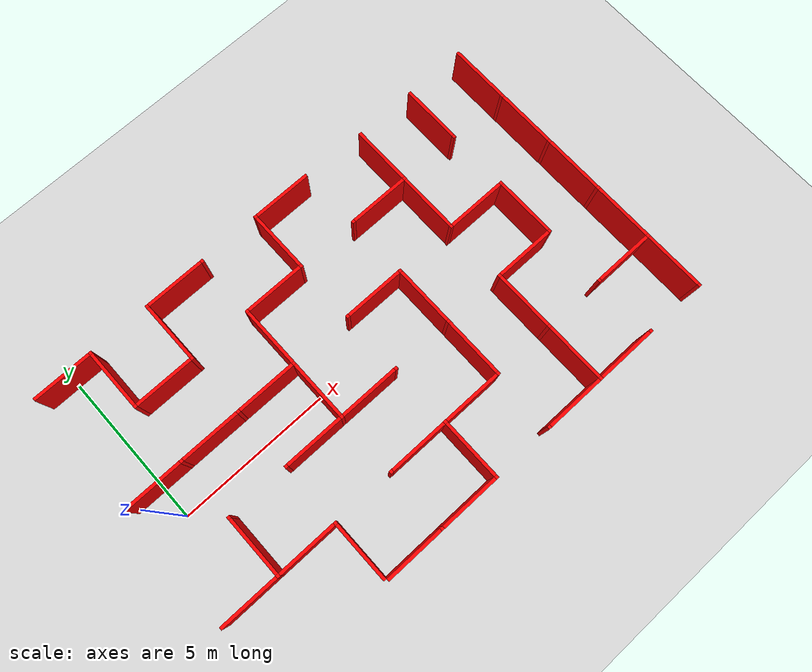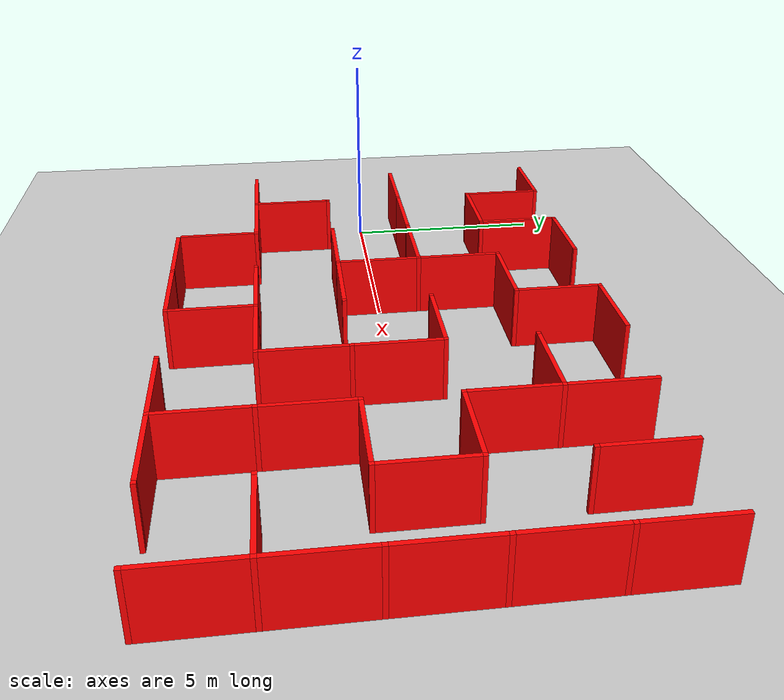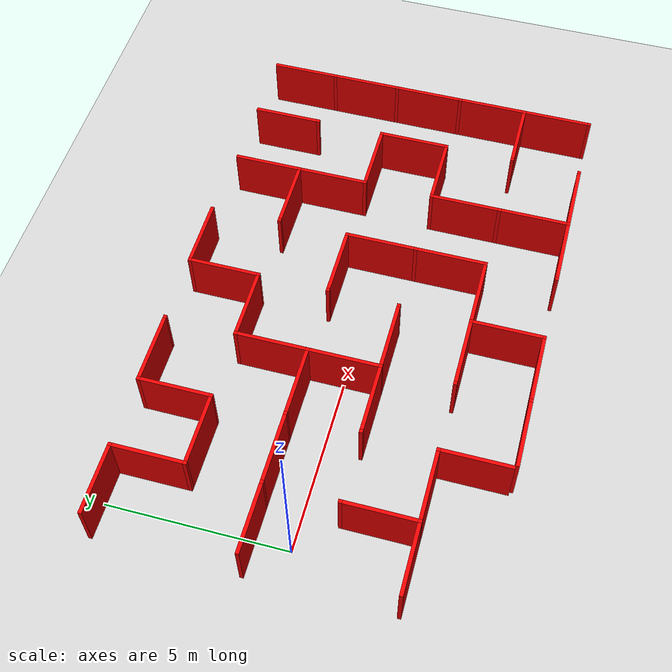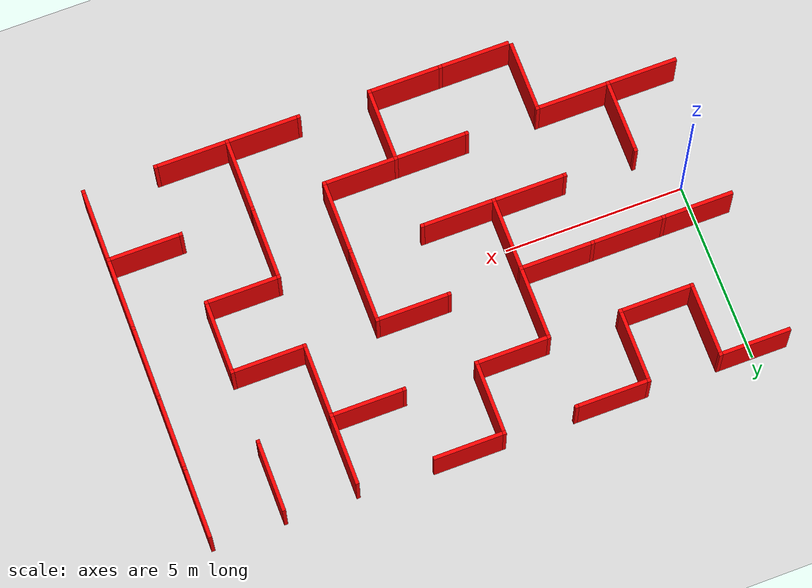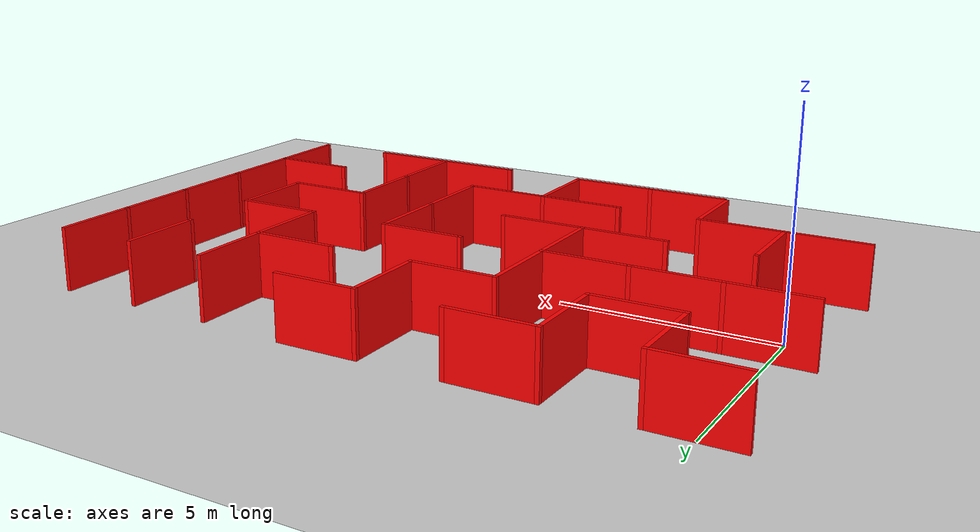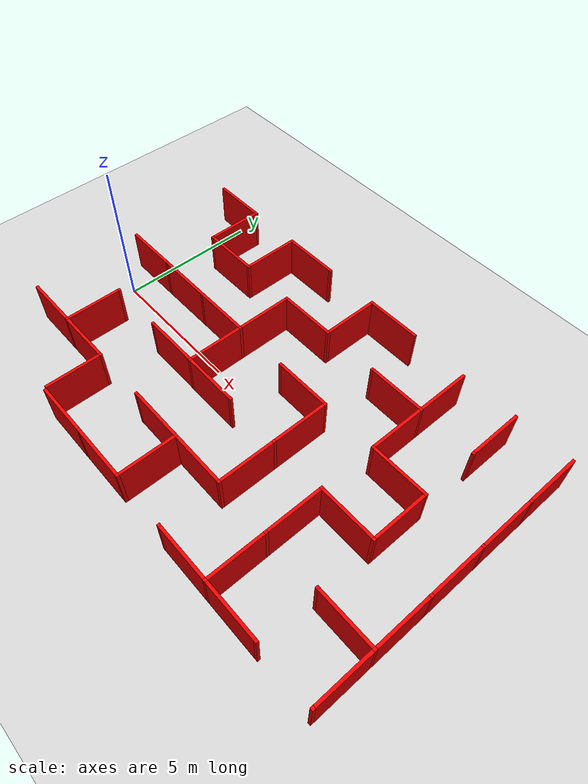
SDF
<sdf version="1.7">
 <world name="empty">
  <model name="ground_plane">
   <static>true</static>
   <link name="link">
    <collision name="collision1">
     <geometry><plane><normal>0 0 1</normal><size>1 1</size></plane></geometry>
    </collision>
    <visual name="visual1"><geometry><plane><normal>0 0 1</normal><size>100 100</size></plane></geometry></visual>
   </link>
  </model>
  <model name="Untitled">
   <link name="Wall_7_5_h">
    <collision name="Wall_0_Collision">
     <geometry><box><size>1.9 0.1 1.5</size></box></geometry>
     <pose>0 0 0.75 0 -0 0</pose>
    </collision>
    <visual name="Wall_0_Visual">
     <pose>0 0 0.75 0 -0 0</pose>
     <geometry><box><size>1.9 0.1 1.5</size></box></geometry>
     <material><ambient>1 0 0 1</ambient><diffuse>1 0 0 1</diffuse><specular>0.1 0.1 0.1 1</specular></material>
     <meta><layer>0</layer></meta>
    </visual>
    <pose>0 5 0 0 -0 0</pose>
   </link>
   <link name="Wall_8_5_v">
    <collision name="Wall_0_Collision">
     <geometry><box><size>1.9 0.1 1.5</size></box></geometry>
     <pose>0 0 0.75 0 -0 0</pose>
    </collision>
    <visual name="Wall_0_Visual">
     <pose>0 0 0.75 0 -0 0</pose>
     <geometry><box><size>1.9 0.1 1.5</size></box></geometry>
     <material><ambient>1 0 0 1</ambient><diffuse>1 0 0 1</diffuse><specular>0.1 0.1 0.1 1</specular></material>
     <meta><layer>0</layer></meta>
    </visual>
    <pose>1 4 0 0 -0 1.5708</pose>
   </link>
   <link name="Joint_1_5">
    <collision name="Wall_2_Collision">
     <geometry><box><size>0.1 0.1 1.5</size></box></geometry>
     <pose>0 0 0.75 0 -0 0</pose>
    </collision>
    <visual name="Wall_2_Visual">
     <pose>0 0 0.75 0 -0 0</pose>
     <geometry><box><size>0.1 0.1 1.5</size></box></geometry>
     <material><ambient>1 0 0 1</ambient><diffuse>1 0 0 1</diffuse><specular>0.1 0.1 0.1 1</specular></material>
     <meta><layer>0</layer></meta>
    </visual>
    <pose>1 5 0 0 -0 0</pose>
   </link>
   <link name="Wall_9_5_h">
    <collision name="Wall_0_Collision">
     <geometry><box><size>1.9 0.1 1.5</size></box></geometry>
     <pose>0 0 0.75 0 -0 0</pose>
    </collision>
    <visual name="Wall_0_Visual">
     <pose>0 0 0.75 0 -0 0</pose>
     <geometry><box><size>1.9 0.1 1.5</size></box></geometry>
     <material><ambient>1 0 0 1</ambient><diffuse>1 0 0 1</diffuse><specular>0.1 0.1 0.1 1</specular></material>
     <meta><layer>0</layer></meta>
    </visual>
    <pose>4 5 0 0 -0 0</pose>
   </link>
   <link name="Wall_9_5_v">
    <collision name="Wall_0_Collision">
     <geometry><box><size>1.9 0.1 1.5</size></box></geometry>
     <pose>0 0 0.75 0 -0 0</pose>
    </collision>
    <visual name="Wall_0_Visual">
     <pose>0 0 0.75 0 -0 0</pose>
     <geometry><box><size>1.9 0.1 1.5</size></box></geometry>
     <material><ambient>1 0 0 1</ambient><diffuse>1 0 0 1</diffuse><specular>0.1 0.1 0.1 1</specular></material>
     <meta><layer>0</layer></meta>
    </visual>
    <pose>3 4 0 0 -0 1.5708</pose>
   </link>
   <link name="Joint_3_5">
    <collision name="Wall_2_Collision">
     <geometry><box><size>0.1 0.1 1.5</size></box></geometry>
     <pose>0 0 0.75 0 -0 0</pose>
    </collision>
    <visual name="Wall_2_Visual">
     <pose>0 0 0.75 0 -0 0</pose>
     <geometry><box><size>0.1 0.1 1.5</size></box></geometry>
     <material><ambient>1 0 0 1</ambient><diffuse>1 0 0 1</diffuse><specular>0.1 0.1 0.1 1</specular></material>
     <meta><layer>0</layer></meta>
    </visual>
    <pose>3 5 0 0 -0 0</pose>
   </link>
   <link name="Joint_5_5">
    <collision name="Wall_2_Collision">
     <geometry><box><size>0.1 0.1 1.5</size></box></geometry>
     <pose>0 0 0.75 0 -0 0</pose>
    </collision>
    <visual name="Wall_2_Visual">
     <pose>0 0 0.75 0 -0 0</pose>
     <geometry><box><size>0.1 0.1 1.5</size></box></geometry>
     <material><ambient>1 0 0 1</ambient><diffuse>1 0 0 1</diffuse><specular>0.1 0.1 0.1 1</specular></material>
     <meta><layer>0</layer></meta>
    </visual>
    <pose>5 5 0 0 -0 0</pose>
   </link>
   <link name="Wall_11_5_h">
    <collision name="Wall_0_Collision">
     <geometry><box><size>1.9 0.1 1.5</size></box></geometry>
     <pose>0 0 0.75 0 -0 0</pose>
    </collision>
    <visual name="Wall_0_Visual">
     <pose>0 0 0.75 0 -0 0</pose>
     <geometry><box><size>1.9 0.1 1.5</size></box></geometry>
     <material><ambient>1 0 0 1</ambient><diffuse>1 0 0 1</diffuse><specular>0.1 0.1 0.1 1</specular></material>
     <meta><layer>0</layer></meta>
    </visual>
    <pose>8 5 0 0 -0 0</pose>
   </link>
   <link name="Wall_11_5_v">
    <collision name="Wall_0_Collision">
     <geometry><box><size>1.9 0.1 1.5</size></box></geometry>
     <pose>0 0 0.75 0 -0 0</pose>
    </collision>
    <visual name="Wall_0_Visual">
     <pose>0 0 0.75 0 -0 0</pose>
     <geometry><box><size>1.9 0.1 1.5</size></box></geometry>
     <material><ambient>1 0 0 1</ambient><diffuse>1 0 0 1</diffuse><specular>0.1 0.1 0.1 1</specular></material>
     <meta><layer>0</layer></meta>
    </visual>
    <pose>7 4 0 0 -0 1.5708</pose>
   </link>
   <link name="Joint_7_5">
    <collision name="Wall_2_Collision">
     <geometry><box><size>0.1 0.1 1.5</size></box></geometry>
     <pose>0 0 0.75 0 -0 0</pose>
    </collision>
    <visual name="Wall_2_Visual">
     <pose>0 0 0.75 0 -0 0</pose>
     <geometry><box><size>0.1 0.1 1.5</size></box></geometry>
     <material><ambient>1 0 0 1</ambient><diffuse>1 0 0 1</diffuse><specular>0.1 0.1 0.1 1</specular></material>
     <meta><layer>0</layer></meta>
    </visual>
    <pose>7 5 0 0 -0 0</pose>
   </link>
   <link name="Wall_13_5_v">
    <collision name="Wall_0_Collision">
     <geometry><box><size>1.9 0.1 1.5</size></box></geometry>
     <pose>0 0 0.75 0 -0 0</pose>
    </collision>
    <visual name="Wall_0_Visual">
     <pose>0 0 0.75 0 -0 0</pose>
     <geometry><box><size>1.9 0.1 1.5</size></box></geometry>
     <material><ambient>1 0 0 1</ambient><diffuse>1 0 0 1</diffuse><specular>0.1 0.1 0.1 1</specular></material>
     <meta><layer>0</layer></meta>
    </visual>
    <pose>11 4 0 0 -0 1.5708</pose>
   </link>
   <link name="Wall_14_5_v">
    <collision name="Wall_0_Collision">
     <geometry><box><size>1.9 0.1 1.5</size></box></geometry>
     <pose>0 0 0.75 0 -0 0</pose>
    </collision>
    <visual name="Wall_0_Visual">
     <pose>0 0 0.75 0 -0 0</pose>
     <geometry><box><size>1.9 0.1 1.5</size></box></geometry>
     <material><ambient>1 0 0 1</ambient><diffuse>1 0 0 1</diffuse><specular>0.1 0.1 0.1 1</specular></material>
     <meta><layer>0</layer></meta>
    </visual>
    <pose>13 4 0 0 -0 1.5708</pose>
   </link>
   <link name="Wall_15_5_v">
    <collision name="Wall_0_Collision">
     <geometry><box><size>1.9 0.1 1.5</size></box></geometry>
     <pose>0 0 0.75 0 -0 0</pose>
    </collision>
    <visual name="Wall_0_Visual">
     <pose>0 0 0.75 0 -0 0</pose>
     <geometry><box><size>1.9 0.1 1.5</size></box></geometry>
     <material><ambient>1 0 0 1</ambient><diffuse>1 0 0 1</diffuse><specular>0.1 0.1 0.1 1</specular></material>
     <meta><layer>0</layer></meta>
    </visual>
    <pose>15 4 0 0 -0 1.5708</pose>
   </link>
   <link name="Wall_8_6_h">
    <collision name="Wall_0_Collision">
     <geometry><box><size>1.9 0.1 1.5</size></box></geometry>
     <pose>0 0 0.75 0 -0 0</pose>
    </collision>
    <visual name="Wall_0_Visual">
     <pose>0 0 0.75 0 -0 0</pose>
     <geometry><box><size>1.9 0.1 1.5</size></box></geometry>
     <material><ambient>1 0 0 1</ambient><diffuse>1 0 0 1</diffuse><specular>0.1 0.1 0.1 1</specular></material>
     <meta><layer>0</layer></meta>
    </visual>
    <pose>2 3 0 0 -0 0</pose>
   </link>
   <link name="Joint_1_3">
    <collision name="Wall_2_Collision">
     <geometry><box><size>0.1 0.1 1.5</size></box></geometry>
     <pose>0 0 0.75 0 -0 0</pose>
    </collision>
    <visual name="Wall_2_Visual">
     <pose>0 0 0.75 0 -0 0</pose>
     <geometry><box><size>0.1 0.1 1.5</size></box></geometry>
     <material><ambient>1 0 0 1</ambient><diffuse>1 0 0 1</diffuse><specular>0.1 0.1 0.1 1</specular></material>
     <meta><layer>0</layer></meta>
    </visual>
    <pose>1 3 0 0 -0 0</pose>
   </link>
   <link name="Joint_3_3">
    <collision name="Wall_2_Collision">
     <geometry><box><size>0.1 0.1 1.5</size></box></geometry>
     <pose>0 0 0.75 0 -0 0</pose>
    </collision>
    <visual name="Wall_2_Visual">
     <pose>0 0 0.75 0 -0 0</pose>
     <geometry><box><size>0.1 0.1 1.5</size></box></geometry>
     <material><ambient>1 0 0 1</ambient><diffuse>1 0 0 1</diffuse><specular>0.1 0.1 0.1 1</specular></material>
     <meta><layer>0</layer></meta>
    </visual>
    <pose>3 3 0 0 -0 0</pose>
   </link>
   <link name="Wall_10_6_h">
    <collision name="Wall_0_Collision">
     <geometry><box><size>1.9 0.1 1.5</size></box></geometry>
     <pose>0 0 0.75 0 -0 0</pose>
    </collision>
    <visual name="Wall_0_Visual">
     <pose>0 0 0.75 0 -0 0</pose>
     <geometry><box><size>1.9 0.1 1.5</size></box></geometry>
     <material><ambient>1 0 0 1</ambient><diffuse>1 0 0 1</diffuse><specular>0.1 0.1 0.1 1</specular></material>
     <meta><layer>0</layer></meta>
    </visual>
    <pose>6 3 0 0 -0 0</pose>
   </link>
   <link name="Wall_10_6_v">
    <collision name="Wall_0_Collision">
     <geometry><box><size>1.9 0.1 1.5</size></box></geometry>
     <pose>0 0 0.75 0 -0 0</pose>
    </collision>
    <visual name="Wall_0_Visual">
     <pose>0 0 0.75 0 -0 0</pose>
     <geometry><box><size>1.9 0.1 1.5</size></box></geometry>
     <material><ambient>1 0 0 1</ambient><diffuse>1 0 0 1</diffuse><specular>0.1 0.1 0.1 1</specular></material>
     <meta><layer>0</layer></meta>
    </visual>
    <pose>5 2 0 0 -0 1.5708</pose>
   </link>
   <link name="Joint_5_3">
    <collision name="Wall_2_Collision">
     <geometry><box><size>0.1 0.1 1.5</size></box></geometry>
     <pose>0 0 0.75 0 -0 0</pose>
    </collision>
    <visual name="Wall_2_Visual">
     <pose>0 0 0.75 0 -0 0</pose>
     <geometry><box><size>0.1 0.1 1.5</size></box></geometry>
     <material><ambient>1 0 0 1</ambient><diffuse>1 0 0 1</diffuse><specular>0.1 0.1 0.1 1</specular></material>
     <meta><layer>0</layer></meta>
    </visual>
    <pose>5 3 0 0 -0 0</pose>
   </link>
   <link name="Joint_7_3">
    <collision name="Wall_2_Collision">
     <geometry><box><size>0.1 0.1 1.5</size></box></geometry>
     <pose>0 0 0.75 0 -0 0</pose>
    </collision>
    <visual name="Wall_2_Visual">
     <pose>0 0 0.75 0 -0 0</pose>
     <geometry><box><size>0.1 0.1 1.5</size></box></geometry>
     <material><ambient>1 0 0 1</ambient><diffuse>1 0 0 1</diffuse><specular>0.1 0.1 0.1 1</specular></material>
     <meta><layer>0</layer></meta>
    </visual>
    <pose>7 3 0 0 -0 0</pose>
   </link>
   <link name="Wall_12_6_h">
    <collision name="Wall_0_Collision">
     <geometry><box><size>1.9 0.1 1.5</size></box></geometry>
     <pose>0 0 0.75 0 -0 0</pose>
    </collision>
    <visual name="Wall_0_Visual">
     <pose>0 0 0.75 0 -0 0</pose>
     <geometry><box><size>1.9 0.1 1.5</size></box></geometry>
     <material><ambient>1 0 0 1</ambient><diffuse>1 0 0 1</diffuse><specular>0.1 0.1 0.1 1</specular></material>
     <meta><layer>0</layer></meta>
    </visual>
    <pose>10 3 0 0 -0 0</pose>
   </link>
   <link name="Joint_9_3">
    <collision name="Wall_2_Collision">
     <geometry><box><size>0.1 0.1 1.5</size></box></geometry>
     <pose>0 0 0.75 0 -0 0</pose>
    </collision>
    <visual name="Wall_2_Visual">
     <pose>0 0 0.75 0 -0 0</pose>
     <geometry><box><size>0.1 0.1 1.5</size></box></geometry>
     <material><ambient>1 0 0 1</ambient><diffuse>1 0 0 1</diffuse><specular>0.1 0.1 0.1 1</specular></material>
     <meta><layer>0</layer></meta>
    </visual>
    <pose>9 3 0 0 -0 0</pose>
   </link>
   <link name="Wall_13_6_v">
    <collision name="Wall_0_Collision">
     <geometry><box><size>1.9 0.1 1.5</size></box></geometry>
     <pose>0 0 0.75 0 -0 0</pose>
    </collision>
    <visual name="Wall_0_Visual">
     <pose>0 0 0.75 0 -0 0</pose>
     <geometry><box><size>1.9 0.1 1.5</size></box></geometry>
     <material><ambient>1 0 0 1</ambient><diffuse>1 0 0 1</diffuse><specular>0.1 0.1 0.1 1</specular></material>
     <meta><layer>0</layer></meta>
    </visual>
    <pose>11 2 0 0 -0 1.5708</pose>
   </link>
   <link name="Joint_11_3">
    <collision name="Wall_2_Collision">
     <geometry><box><size>0.1 0.1 1.5</size></box></geometry>
     <pose>0 0 0.75 0 -0 0</pose>
    </collision>
    <visual name="Wall_2_Visual">
     <pose>0 0 0.75 0 -0 0</pose>
     <geometry><box><size>0.1 0.1 1.5</size></box></geometry>
     <material><ambient>1 0 0 1</ambient><diffuse>1 0 0 1</diffuse><specular>0.1 0.1 0.1 1</specular></material>
     <meta><layer>0</layer></meta>
    </visual>
    <pose>11 3 0 0 -0 0</pose>
   </link>
   <link name="Joint_13_3">
    <collision name="Wall_2_Collision">
     <geometry><box><size>0.1 0.1 1.5</size></box></geometry>
     <pose>0 0 0.75 0 -0 0</pose>
    </collision>
    <visual name="Wall_2_Visual">
     <pose>0 0 0.75 0 -0 0</pose>
     <geometry><box><size>0.1 0.1 1.5</size></box></geometry>
     <material><ambient>1 0 0 1</ambient><diffuse>1 0 0 1</diffuse><specular>0.1 0.1 0.1 1</specular></material>
     <meta><layer>0</layer></meta>
    </visual>
    <pose>13 3 0 0 -0 0</pose>
   </link>
   <link name="Wall_15_6_v">
    <collision name="Wall_0_Collision">
     <geometry><box><size>1.9 0.1 1.5</size></box></geometry>
     <pose>0 0 0.75 0 -0 0</pose>
    </collision>
    <visual name="Wall_0_Visual">
     <pose>0 0 0.75 0 -0 0</pose>
     <geometry><box><size>1.9 0.1 1.5</size></box></geometry>
     <material><ambient>1 0 0 1</ambient><diffuse>1 0 0 1</diffuse><specular>0.1 0.1 0.1 1</specular></material>
     <meta><layer>0</layer></meta>
    </visual>
    <pose>15 2 0 0 -0 1.5708</pose>
   </link>
   <link name="Joint_15_3">
    <collision name="Wall_2_Collision">
     <geometry><box><size>0.1 0.1 1.5</size></box></geometry>
     <pose>0 0 0.75 0 -0 0</pose>
    </collision>
    <visual name="Wall_2_Visual">
     <pose>0 0 0.75 0 -0 0</pose>
     <geometry><box><size>0.1 0.1 1.5</size></box></geometry>
     <material><ambient>1 0 0 1</ambient><diffuse>1 0 0 1</diffuse><specular>0.1 0.1 0.1 1</specular></material>
     <meta><layer>0</layer></meta>
    </visual>
    <pose>15 3 0 0 -0 0</pose>
   </link>
   <link name="Wall_7_7_h">
    <collision name="Wall_0_Collision">
     <geometry><box><size>1.9 0.1 1.5</size></box></geometry>
     <pose>0 0 0.75 0 -0 0</pose>
    </collision>
    <visual name="Wall_0_Visual">
     <pose>0 0 0.75 0 -0 0</pose>
     <geometry><box><size>1.9 0.1 1.5</size></box></geometry>
     <material><ambient>1 0 0 1</ambient><diffuse>1 0 0 1</diffuse><specular>0.1 0.1 0.1 1</specular></material>
     <meta><layer>0</layer></meta>
    </visual>
    <pose>0 1 0 0 -0 0</pose>
   </link>
   <link name="Wall_8_7_h">
    <collision name="Wall_0_Collision">
     <geometry><box><size>1.9 0.1 1.5</size></box></geometry>
     <pose>0 0 0.75 0 -0 0</pose>
    </collision>
    <visual name="Wall_0_Visual">
     <pose>0 0 0.75 0 -0 0</pose>
     <geometry><box><size>1.9 0.1 1.5</size></box></geometry>
     <material><ambient>1 0 0 1</ambient><diffuse>1 0 0 1</diffuse><specular>0.1 0.1 0.1 1</specular></material>
     <meta><layer>0</layer></meta>
    </visual>
    <pose>2 1 0 0 -0 0</pose>
   </link>
   <link name="Joint_1_1">
    <collision name="Wall_2_Collision">
     <geometry><box><size>0.1 0.1 1.5</size></box></geometry>
     <pose>0 0 0.75 0 -0 0</pose>
    </collision>
    <visual name="Wall_2_Visual">
     <pose>0 0 0.75 0 -0 0</pose>
     <geometry><box><size>0.1 0.1 1.5</size></box></geometry>
     <material><ambient>1 0 0 1</ambient><diffuse>1 0 0 1</diffuse><specular>0.1 0.1 0.1 1</specular></material>
     <meta><layer>0</layer></meta>
    </visual>
    <pose>1 1 0 0 -0 0</pose>
   </link>
   <link name="Wall_9_7_h">
    <collision name="Wall_0_Collision">
     <geometry><box><size>1.9 0.1 1.5</size></box></geometry>
     <pose>0 0 0.75 0 -0 0</pose>
    </collision>
    <visual name="Wall_0_Visual">
     <pose>0 0 0.75 0 -0 0</pose>
     <geometry><box><size>1.9 0.1 1.5</size></box></geometry>
     <material><ambient>1 0 0 1</ambient><diffuse>1 0 0 1</diffuse><specular>0.1 0.1 0.1 1</specular></material>
     <meta><layer>0</layer></meta>
    </visual>
    <pose>4 1 0 0 -0 0</pose>
   </link>
   <link name="Joint_3_1">
    <collision name="Wall_2_Collision">
     <geometry><box><size>0.1 0.1 1.5</size></box></geometry>
     <pose>0 0 0.75 0 -0 0</pose>
    </collision>
    <visual name="Wall_2_Visual">
     <pose>0 0 0.75 0 -0 0</pose>
     <geometry><box><size>0.1 0.1 1.5</size></box></geometry>
     <material><ambient>1 0 0 1</ambient><diffuse>1 0 0 1</diffuse><specular>0.1 0.1 0.1 1</specular></material>
     <meta><layer>0</layer></meta>
    </visual>
    <pose>3 1 0 0 -0 0</pose>
   </link>
   <link name="Wall_10_7_v">
    <collision name="Wall_0_Collision">
     <geometry><box><size>1.9 0.1 1.5</size></box></geometry>
     <pose>0 0 0.75 0 -0 0</pose>
    </collision>
    <visual name="Wall_0_Visual">
     <pose>0 0 0.75 0 -0 0</pose>
     <geometry><box><size>1.9 0.1 1.5</size></box></geometry>
     <material><ambient>1 0 0 1</ambient><diffuse>1 0 0 1</diffuse><specular>0.1 0.1 0.1 1</specular></material>
     <meta><layer>0</layer></meta>
    </visual>
    <pose>5 -0 0 0 -0 1.5708</pose>
   </link>
   <link name="Joint_5_1">
    <collision name="Wall_2_Collision">
     <geometry><box><size>0.1 0.1 1.5</size></box></geometry>
     <pose>0 0 0.75 0 -0 0</pose>
    </collision>
    <visual name="Wall_2_Visual">
     <pose>0 0 0.75 0 -0 0</pose>
     <geometry><box><size>0.1 0.1 1.5</size></box></geometry>
     <material><ambient>1 0 0 1</ambient><diffuse>1 0 0 1</diffuse><specular>0.1 0.1 0.1 1</specular></material>
     <meta><layer>0</layer></meta>
    </visual>
    <pose>5 1 0 0 -0 0</pose>
   </link>
   <link name="Wall_11_7_h">
    <collision name="Wall_0_Collision">
     <geometry><box><size>1.9 0.1 1.5</size></box></geometry>
     <pose>0 0 0.75 0 -0 0</pose>
    </collision>
    <visual name="Wall_0_Visual">
     <pose>0 0 0.75 0 -0 0</pose>
     <geometry><box><size>1.9 0.1 1.5</size></box></geometry>
     <material><ambient>1 0 0 1</ambient><diffuse>1 0 0 1</diffuse><specular>0.1 0.1 0.1 1</specular></material>
     <meta><layer>0</layer></meta>
    </visual>
    <pose>8 1 0 0 -0 0</pose>
   </link>
   <link name="Joint_7_1">
    <collision name="Wall_2_Collision">
     <geometry><box><size>0.1 0.1 1.5</size></box></geometry>
     <pose>0 0 0.75 0 -0 0</pose>
    </collision>
    <visual name="Wall_2_Visual">
     <pose>0 0 0.75 0 -0 0</pose>
     <geometry><box><size>0.1 0.1 1.5</size></box></geometry>
     <material><ambient>1 0 0 1</ambient><diffuse>1 0 0 1</diffuse><specular>0.1 0.1 0.1 1</specular></material>
     <meta><layer>0</layer></meta>
    </visual>
    <pose>7 1 0 0 -0 0</pose>
   </link>
   <link name="Wall_12_7_v">
    <collision name="Wall_0_Collision">
     <geometry><box><size>1.9 0.1 1.5</size></box></geometry>
     <pose>0 0 0.75 0 -0 0</pose>
    </collision>
    <visual name="Wall_0_Visual">
     <pose>0 0 0.75 0 -0 0</pose>
     <geometry><box><size>1.9 0.1 1.5</size></box></geometry>
     <material><ambient>1 0 0 1</ambient><diffuse>1 0 0 1</diffuse><specular>0.1 0.1 0.1 1</specular></material>
     <meta><layer>0</layer></meta>
    </visual>
    <pose>9 -0 0 0 -0 1.5708</pose>
   </link>
   <link name="Joint_9_1">
    <collision name="Wall_2_Collision">
     <geometry><box><size>0.1 0.1 1.5</size></box></geometry>
     <pose>0 0 0.75 0 -0 0</pose>
    </collision>
    <visual name="Wall_2_Visual">
     <pose>0 0 0.75 0 -0 0</pose>
     <geometry><box><size>0.1 0.1 1.5</size></box></geometry>
     <material><ambient>1 0 0 1</ambient><diffuse>1 0 0 1</diffuse><specular>0.1 0.1 0.1 1</specular></material>
     <meta><layer>0</layer></meta>
    </visual>
    <pose>9 1 0 0 -0 0</pose>
   </link>
   <link name="Wall_13_7_h">
    <collision name="Wall_0_Collision">
     <geometry><box><size>1.9 0.1 1.5</size></box></geometry>
     <pose>0 0 0.75 0 -0 0</pose>
    </collision>
    <visual name="Wall_0_Visual">
     <pose>0 0 0.75 0 -0 0</pose>
     <geometry><box><size>1.9 0.1 1.5</size></box></geometry>
     <material><ambient>1 0 0 1</ambient><diffuse>1 0 0 1</diffuse><specular>0.1 0.1 0.1 1</specular></material>
     <meta><layer>0</layer></meta>
    </visual>
    <pose>12 1 0 0 -0 0</pose>
   </link>
   <link name="Joint_11_1">
    <collision name="Wall_2_Collision">
     <geometry><box><size>0.1 0.1 1.5</size></box></geometry>
     <pose>0 0 0.75 0 -0 0</pose>
    </collision>
    <visual name="Wall_2_Visual">
     <pose>0 0 0.75 0 -0 0</pose>
     <geometry><box><size>0.1 0.1 1.5</size></box></geometry>
     <material><ambient>1 0 0 1</ambient><diffuse>1 0 0 1</diffuse><specular>0.1 0.1 0.1 1</specular></material>
     <meta><layer>0</layer></meta>
    </visual>
    <pose>11 1 0 0 -0 0</pose>
   </link>
   <link name="Wall_14_7_v">
    <collision name="Wall_0_Collision">
     <geometry><box><size>1.9 0.1 1.5</size></box></geometry>
     <pose>0 0 0.75 0 -0 0</pose>
    </collision>
    <visual name="Wall_0_Visual">
     <pose>0 0 0.75 0 -0 0</pose>
     <geometry><box><size>1.9 0.1 1.5</size></box></geometry>
     <material><ambient>1 0 0 1</ambient><diffuse>1 0 0 1</diffuse><specular>0.1 0.1 0.1 1</specular></material>
     <meta><layer>0</layer></meta>
    </visual>
    <pose>13 -0 0 0 -0 1.5708</pose>
   </link>
   <link name="Joint_13_1">
    <collision name="Wall_2_Collision">
     <geometry><box><size>0.1 0.1 1.5</size></box></geometry>
     <pose>0 0 0.75 0 -0 0</pose>
    </collision>
    <visual name="Wall_2_Visual">
     <pose>0 0 0.75 0 -0 0</pose>
     <geometry><box><size>0.1 0.1 1.5</size></box></geometry>
     <material><ambient>1 0 0 1</ambient><diffuse>1 0 0 1</diffuse><specular>0.1 0.1 0.1 1</specular></material>
     <meta><layer>0</layer></meta>
    </visual>
    <pose>13 1 0 0 -0 0</pose>
   </link>
   <link name="Wall_15_7_v">
    <collision name="Wall_0_Collision">
     <geometry><box><size>1.9 0.1 1.5</size></box></geometry>
     <pose>0 0 0.75 0 -0 0</pose>
    </collision>
    <visual name="Wall_0_Visual">
     <pose>0 0 0.75 0 -0 0</pose>
     <geometry><box><size>1.9 0.1 1.5</size></box></geometry>
     <material><ambient>1 0 0 1</ambient><diffuse>1 0 0 1</diffuse><specular>0.1 0.1 0.1 1</specular></material>
     <meta><layer>0</layer></meta>
    </visual>
    <pose>15 -0 0 0 -0 1.5708</pose>
   </link>
   <link name="Joint_15_1">
    <collision name="Wall_2_Collision">
     <geometry><box><size>0.1 0.1 1.5</size></box></geometry>
     <pose>0 0 0.75 0 -0 0</pose>
    </collision>
    <visual name="Wall_2_Visual">
     <pose>0 0 0.75 0 -0 0</pose>
     <geometry><box><size>0.1 0.1 1.5</size></box></geometry>
     <material><ambient>1 0 0 1</ambient><diffuse>1 0 0 1</diffuse><specular>0.1 0.1 0.1 1</specular></material>
     <meta><layer>0</layer></meta>
    </visual>
    <pose>15 1 0 0 -0 0</pose>
   </link>
   <link name="Wall_8_8_v">
    <collision name="Wall_0_Collision">
     <geometry><box><size>1.9 0.1 1.5</size></box></geometry>
     <pose>0 0 0.75 0 -0 0</pose>
    </collision>
    <visual name="Wall_0_Visual">
     <pose>0 0 0.75 0 -0 0</pose>
     <geometry><box><size>1.9 0.1 1.5</size></box></geometry>
     <material><ambient>1 0 0 1</ambient><diffuse>1 0 0 1</diffuse><specular>0.1 0.1 0.1 1</specular></material>
     <meta><layer>0</layer></meta>
    </visual>
    <pose>1 -2 0 0 -0 1.5708</pose>
   </link>
   <link name="Joint_1_-1">
    <collision name="Wall_2_Collision">
     <geometry><box><size>0.1 0.1 1.5</size></box></geometry>
     <pose>0 0 0.75 0 -0 0</pose>
    </collision>
    <visual name="Wall_2_Visual">
     <pose>0 0 0.75 0 -0 0</pose>
     <geometry><box><size>0.1 0.1 1.5</size></box></geometry>
     <material><ambient>1 0 0 1</ambient><diffuse>1 0 0 1</diffuse><specular>0.1 0.1 0.1 1</specular></material>
     <meta><layer>0</layer></meta>
    </visual>
    <pose>1 -1 0 0 -0 0</pose>
   </link>
   <link name="Wall_9_8_h">
    <collision name="Wall_0_Collision">
     <geometry><box><size>1.9 0.1 1.5</size></box></geometry>
     <pose>0 0 0.75 0 -0 0</pose>
    </collision>
    <visual name="Wall_0_Visual">
     <pose>0 0 0.75 0 -0 0</pose>
     <geometry><box><size>1.9 0.1 1.5</size></box></geometry>
     <material><ambient>1 0 0 1</ambient><diffuse>1 0 0 1</diffuse><specular>0.1 0.1 0.1 1</specular></material>
     <meta><layer>0</layer></meta>
    </visual>
    <pose>4 -1 0 0 -0 0</pose>
   </link>
   <link name="Joint_3_-1">
    <collision name="Wall_2_Collision">
     <geometry><box><size>0.1 0.1 1.5</size></box></geometry>
     <pose>0 0 0.75 0 -0 0</pose>
    </collision>
    <visual name="Wall_2_Visual">
     <pose>0 0 0.75 0 -0 0</pose>
     <geometry><box><size>0.1 0.1 1.5</size></box></geometry>
     <material><ambient>1 0 0 1</ambient><diffuse>1 0 0 1</diffuse><specular>0.1 0.1 0.1 1</specular></material>
     <meta><layer>0</layer></meta>
    </visual>
    <pose>3 -1 0 0 -0 0</pose>
   </link>
   <link name="Wall_10_8_h">
    <collision name="Wall_0_Collision">
     <geometry><box><size>1.9 0.1 1.5</size></box></geometry>
     <pose>0 0 0.75 0 -0 0</pose>
    </collision>
    <visual name="Wall_0_Visual">
     <pose>0 0 0.75 0 -0 0</pose>
     <geometry><box><size>1.9 0.1 1.5</size></box></geometry>
     <material><ambient>1 0 0 1</ambient><diffuse>1 0 0 1</diffuse><specular>0.1 0.1 0.1 1</specular></material>
     <meta><layer>0</layer></meta>
    </visual>
    <pose>6 -1 0 0 -0 0</pose>
   </link>
   <link name="Joint_5_-1">
    <collision name="Wall_2_Collision">
     <geometry><box><size>0.1 0.1 1.5</size></box></geometry>
     <pose>0 0 0.75 0 -0 0</pose>
    </collision>
    <visual name="Wall_2_Visual">
     <pose>0 0 0.75 0 -0 0</pose>
     <geometry><box><size>0.1 0.1 1.5</size></box></geometry>
     <material><ambient>1 0 0 1</ambient><diffuse>1 0 0 1</diffuse><specular>0.1 0.1 0.1 1</specular></material>
     <meta><layer>0</layer></meta>
    </visual>
    <pose>5 -1 0 0 -0 0</pose>
   </link>
   <link name="Joint_7_-1">
    <collision name="Wall_2_Collision">
     <geometry><box><size>0.1 0.1 1.5</size></box></geometry>
     <pose>0 0 0.75 0 -0 0</pose>
    </collision>
    <visual name="Wall_2_Visual">
     <pose>0 0 0.75 0 -0 0</pose>
     <geometry><box><size>0.1 0.1 1.5</size></box></geometry>
     <material><ambient>1 0 0 1</ambient><diffuse>1 0 0 1</diffuse><specular>0.1 0.1 0.1 1</specular></material>
     <meta><layer>0</layer></meta>
    </visual>
    <pose>7 -1 0 0 -0 0</pose>
   </link>
   <link name="Wall_12_8_v">
    <collision name="Wall_0_Collision">
     <geometry><box><size>1.9 0.1 1.5</size></box></geometry>
     <pose>0 0 0.75 0 -0 0</pose>
    </collision>
    <visual name="Wall_0_Visual">
     <pose>0 0 0.75 0 -0 0</pose>
     <geometry><box><size>1.9 0.1 1.5</size></box></geometry>
     <material><ambient>1 0 0 1</ambient><diffuse>1 0 0 1</diffuse><specular>0.1 0.1 0.1 1</specular></material>
     <meta><layer>0</layer></meta>
    </visual>
    <pose>9 -2 0 0 -0 1.5708</pose>
   </link>
   <link name="Joint_9_-1">
    <collision name="Wall_2_Collision">
     <geometry><box><size>0.1 0.1 1.5</size></box></geometry>
     <pose>0 0 0.75 0 -0 0</pose>
    </collision>
    <visual name="Wall_2_Visual">
     <pose>0 0 0.75 0 -0 0</pose>
     <geometry><box><size>0.1 0.1 1.5</size></box></geometry>
     <material><ambient>1 0 0 1</ambient><diffuse>1 0 0 1</diffuse><specular>0.1 0.1 0.1 1</specular></material>
     <meta><layer>0</layer></meta>
    </visual>
    <pose>9 -1 0 0 -0 0</pose>
   </link>
   <link name="Wall_13_8_h">
    <collision name="Wall_0_Collision">
     <geometry><box><size>1.9 0.1 1.5</size></box></geometry>
     <pose>0 0 0.75 0 -0 0</pose>
    </collision>
    <visual name="Wall_0_Visual">
     <pose>0 0 0.75 0 -0 0</pose>
     <geometry><box><size>1.9 0.1 1.5</size></box></geometry>
     <material><ambient>1 0 0 1</ambient><diffuse>1 0 0 1</diffuse><specular>0.1 0.1 0.1 1</specular></material>
     <meta><layer>0</layer></meta>
    </visual>
    <pose>12 -1 0 0 -0 0</pose>
   </link>
   <link name="Wall_13_8_v">
    <collision name="Wall_0_Collision">
     <geometry><box><size>1.9 0.1 1.5</size></box></geometry>
     <pose>0 0 0.75 0 -0 0</pose>
    </collision>
    <visual name="Wall_0_Visual">
     <pose>0 0 0.75 0 -0 0</pose>
     <geometry><box><size>1.9 0.1 1.5</size></box></geometry>
     <material><ambient>1 0 0 1</ambient><diffuse>1 0 0 1</diffuse><specular>0.1 0.1 0.1 1</specular></material>
     <meta><layer>0</layer></meta>
    </visual>
    <pose>11 -2 0 0 -0 1.5708</pose>
   </link>
   <link name="Joint_11_-1">
    <collision name="Wall_2_Collision">
     <geometry><box><size>0.1 0.1 1.5</size></box></geometry>
     <pose>0 0 0.75 0 -0 0</pose>
    </collision>
    <visual name="Wall_2_Visual">
     <pose>0 0 0.75 0 -0 0</pose>
     <geometry><box><size>0.1 0.1 1.5</size></box></geometry>
     <material><ambient>1 0 0 1</ambient><diffuse>1 0 0 1</diffuse><specular>0.1 0.1 0.1 1</specular></material>
     <meta><layer>0</layer></meta>
    </visual>
    <pose>11 -1 0 0 -0 0</pose>
   </link>
   <link name="Joint_13_-1">
    <collision name="Wall_2_Collision">
     <geometry><box><size>0.1 0.1 1.5</size></box></geometry>
     <pose>0 0 0.75 0 -0 0</pose>
    </collision>
    <visual name="Wall_2_Visual">
     <pose>0 0 0.75 0 -0 0</pose>
     <geometry><box><size>0.1 0.1 1.5</size></box></geometry>
     <material><ambient>1 0 0 1</ambient><diffuse>1 0 0 1</diffuse><specular>0.1 0.1 0.1 1</specular></material>
     <meta><layer>0</layer></meta>
    </visual>
    <pose>13 -1 0 0 -0 0</pose>
   </link>
   <link name="Wall_15_8_v">
    <collision name="Wall_0_Collision">
     <geometry><box><size>1.9 0.1 1.5</size></box></geometry>
     <pose>0 0 0.75 0 -0 0</pose>
    </collision>
    <visual name="Wall_0_Visual">
     <pose>0 0 0.75 0 -0 0</pose>
     <geometry><box><size>1.9 0.1 1.5</size></box></geometry>
     <material><ambient>1 0 0 1</ambient><diffuse>1 0 0 1</diffuse><specular>0.1 0.1 0.1 1</specular></material>
     <meta><layer>0</layer></meta>
    </visual>
    <pose>15 -2 0 0 -0 1.5708</pose>
   </link>
   <link name="Joint_15_-1">
    <collision name="Wall_2_Collision">
     <geometry><box><size>0.1 0.1 1.5</size></box></geometry>
     <pose>0 0 0.75 0 -0 0</pose>
    </collision>
    <visual name="Wall_2_Visual">
     <pose>0 0 0.75 0 -0 0</pose>
     <geometry><box><size>0.1 0.1 1.5</size></box></geometry>
     <material><ambient>1 0 0 1</ambient><diffuse>1 0 0 1</diffuse><specular>0.1 0.1 0.1 1</specular></material>
     <meta><layer>0</layer></meta>
    </visual>
    <pose>15 -1 0 0 -0 0</pose>
   </link>
   <link name="Wall_7_9_h">
    <collision name="Wall_0_Collision">
     <geometry><box><size>1.9 0.1 1.5</size></box></geometry>
     <pose>0 0 0.75 0 -0 0</pose>
    </collision>
    <visual name="Wall_0_Visual">
     <pose>0 0 0.75 0 -0 0</pose>
     <geometry><box><size>1.9 0.1 1.5</size></box></geometry>
     <material><ambient>1 0 0 1</ambient><diffuse>1 0 0 1</diffuse><specular>0.1 0.1 0.1 1</specular></material>
     <meta><layer>0</layer></meta>
    </visual>
    <pose>0 -3 0 0 -0 0</pose>
   </link>
   <link name="Wall_8_9_h">
    <collision name="Wall_0_Collision">
     <geometry><box><size>1.9 0.1 1.5</size></box></geometry>
     <pose>0 0 0.75 0 -0 0</pose>
    </collision>
    <visual name="Wall_0_Visual">
     <pose>0 0 0.75 0 -0 0</pose>
     <geometry><box><size>1.9 0.1 1.5</size></box></geometry>
     <material><ambient>1 0 0 1</ambient><diffuse>1 0 0 1</diffuse><specular>0.1 0.1 0.1 1</specular></material>
     <meta><layer>0</layer></meta>
    </visual>
    <pose>2 -3 0 0 -0 0</pose>
   </link>
   <link name="Joint_1_-3">
    <collision name="Wall_2_Collision">
     <geometry><box><size>0.1 0.1 1.5</size></box></geometry>
     <pose>0 0 0.75 0 -0 0</pose>
    </collision>
    <visual name="Wall_2_Visual">
     <pose>0 0 0.75 0 -0 0</pose>
     <geometry><box><size>0.1 0.1 1.5</size></box></geometry>
     <material><ambient>1 0 0 1</ambient><diffuse>1 0 0 1</diffuse><specular>0.1 0.1 0.1 1</specular></material>
     <meta><layer>0</layer></meta>
    </visual>
    <pose>1 -3 0 0 -0 0</pose>
   </link>
   <link name="Wall_9_9_v">
    <collision name="Wall_0_Collision">
     <geometry><box><size>1.9 0.1 1.5</size></box></geometry>
     <pose>0 0 0.75 0 -0 0</pose>
    </collision>
    <visual name="Wall_0_Visual">
     <pose>0 0 0.75 0 -0 0</pose>
     <geometry><box><size>1.9 0.1 1.5</size></box></geometry>
     <material><ambient>1 0 0 1</ambient><diffuse>1 0 0 1</diffuse><specular>0.1 0.1 0.1 1</specular></material>
     <meta><layer>0</layer></meta>
    </visual>
    <pose>3 -4 0 0 -0 1.5708</pose>
   </link>
   <link name="Joint_3_-3">
    <collision name="Wall_2_Collision">
     <geometry><box><size>0.1 0.1 1.5</size></box></geometry>
     <pose>0 0 0.75 0 -0 0</pose>
    </collision>
    <visual name="Wall_2_Visual">
     <pose>0 0 0.75 0 -0 0</pose>
     <geometry><box><size>0.1 0.1 1.5</size></box></geometry>
     <material><ambient>1 0 0 1</ambient><diffuse>1 0 0 1</diffuse><specular>0.1 0.1 0.1 1</specular></material>
     <meta><layer>0</layer></meta>
    </visual>
    <pose>3 -3 0 0 -0 0</pose>
   </link>
   <link name="Wall_10_9_h">
    <collision name="Wall_0_Collision">
     <geometry><box><size>1.9 0.1 1.5</size></box></geometry>
     <pose>0 0 0.75 0 -0 0</pose>
    </collision>
    <visual name="Wall_0_Visual">
     <pose>0 0 0.75 0 -0 0</pose>
     <geometry><box><size>1.9 0.1 1.5</size></box></geometry>
     <material><ambient>1 0 0 1</ambient><diffuse>1 0 0 1</diffuse><specular>0.1 0.1 0.1 1</specular></material>
     <meta><layer>0</layer></meta>
    </visual>
    <pose>6 -3 0 0 -0 0</pose>
   </link>
   <link name="Joint_5_-3">
    <collision name="Wall_2_Collision">
     <geometry><box><size>0.1 0.1 1.5</size></box></geometry>
     <pose>0 0 0.75 0 -0 0</pose>
    </collision>
    <visual name="Wall_2_Visual">
     <pose>0 0 0.75 0 -0 0</pose>
     <geometry><box><size>0.1 0.1 1.5</size></box></geometry>
     <material><ambient>1 0 0 1</ambient><diffuse>1 0 0 1</diffuse><specular>0.1 0.1 0.1 1</specular></material>
     <meta><layer>0</layer></meta>
    </visual>
    <pose>5 -3 0 0 -0 0</pose>
   </link>
   <link name="Wall_11_9_h">
    <collision name="Wall_0_Collision">
     <geometry><box><size>1.9 0.1 1.5</size></box></geometry>
     <pose>0 0 0.75 0 -0 0</pose>
    </collision>
    <visual name="Wall_0_Visual">
     <pose>0 0 0.75 0 -0 0</pose>
     <geometry><box><size>1.9 0.1 1.5</size></box></geometry>
     <material><ambient>1 0 0 1</ambient><diffuse>1 0 0 1</diffuse><specular>0.1 0.1 0.1 1</specular></material>
     <meta><layer>0</layer></meta>
    </visual>
    <pose>8 -3 0 0 -0 0</pose>
   </link>
   <link name="Wall_11_9_v">
    <collision name="Wall_0_Collision">
     <geometry><box><size>1.9 0.1 1.5</size></box></geometry>
     <pose>0 0 0.75 0 -0 0</pose>
    </collision>
    <visual name="Wall_0_Visual">
     <pose>0 0 0.75 0 -0 0</pose>
     <geometry><box><size>1.9 0.1 1.5</size></box></geometry>
     <material><ambient>1 0 0 1</ambient><diffuse>1 0 0 1</diffuse><specular>0.1 0.1 0.1 1</specular></material>
     <meta><layer>0</layer></meta>
    </visual>
    <pose>7 -4 0 0 -0 1.5708</pose>
   </link>
   <link name="Joint_7_-3">
    <collision name="Wall_2_Collision">
     <geometry><box><size>0.1 0.1 1.5</size></box></geometry>
     <pose>0 0 0.75 0 -0 0</pose>
    </collision>
    <visual name="Wall_2_Visual">
     <pose>0 0 0.75 0 -0 0</pose>
     <geometry><box><size>0.1 0.1 1.5</size></box></geometry>
     <material><ambient>1 0 0 1</ambient><diffuse>1 0 0 1</diffuse><specular>0.1 0.1 0.1 1</specular></material>
     <meta><layer>0</layer></meta>
    </visual>
    <pose>7 -3 0 0 -0 0</pose>
   </link>
   <link name="Joint_9_-3">
    <collision name="Wall_2_Collision">
     <geometry><box><size>0.1 0.1 1.5</size></box></geometry>
     <pose>0 0 0.75 0 -0 0</pose>
    </collision>
    <visual name="Wall_2_Visual">
     <pose>0 0 0.75 0 -0 0</pose>
     <geometry><box><size>0.1 0.1 1.5</size></box></geometry>
     <material><ambient>1 0 0 1</ambient><diffuse>1 0 0 1</diffuse><specular>0.1 0.1 0.1 1</specular></material>
     <meta><layer>0</layer></meta>
    </visual>
    <pose>9 -3 0 0 -0 0</pose>
   </link>
   <link name="Wall_13_9_v">
    <collision name="Wall_0_Collision">
     <geometry><box><size>1.9 0.1 1.5</size></box></geometry>
     <pose>0 0 0.75 0 -0 0</pose>
    </collision>
    <visual name="Wall_0_Visual">
     <pose>0 0 0.75 0 -0 0</pose>
     <geometry><box><size>1.9 0.1 1.5</size></box></geometry>
     <material><ambient>1 0 0 1</ambient><diffuse>1 0 0 1</diffuse><specular>0.1 0.1 0.1 1</specular></material>
     <meta><layer>0</layer></meta>
    </visual>
    <pose>11 -4 0 0 -0 1.5708</pose>
   </link>
   <link name="Joint_11_-3">
    <collision name="Wall_2_Collision">
     <geometry><box><size>0.1 0.1 1.5</size></box></geometry>
     <pose>0 0 0.75 0 -0 0</pose>
    </collision>
    <visual name="Wall_2_Visual">
     <pose>0 0 0.75 0 -0 0</pose>
     <geometry><box><size>0.1 0.1 1.5</size></box></geometry>
     <material><ambient>1 0 0 1</ambient><diffuse>1 0 0 1</diffuse><specular>0.1 0.1 0.1 1</specular></material>
     <meta><layer>0</layer></meta>
    </visual>
    <pose>11 -3 0 0 -0 0</pose>
   </link>
   <link name="Wall_14_9_h">
    <collision name="Wall_0_Collision">
     <geometry><box><size>1.9 0.1 1.5</size></box></geometry>
     <pose>0 0 0.75 0 -0 0</pose>
    </collision>
    <visual name="Wall_0_Visual">
     <pose>0 0 0.75 0 -0 0</pose>
     <geometry><box><size>1.9 0.1 1.5</size></box></geometry>
     <material><ambient>1 0 0 1</ambient><diffuse>1 0 0 1</diffuse><specular>0.1 0.1 0.1 1</specular></material>
     <meta><layer>0</layer></meta>
    </visual>
    <pose>14 -3 0 0 -0 0</pose>
   </link>
   <link name="Joint_13_-3">
    <collision name="Wall_2_Collision">
     <geometry><box><size>0.1 0.1 1.5</size></box></geometry>
     <pose>0 0 0.75 0 -0 0</pose>
    </collision>
    <visual name="Wall_2_Visual">
     <pose>0 0 0.75 0 -0 0</pose>
     <geometry><box><size>0.1 0.1 1.5</size></box></geometry>
     <material><ambient>1 0 0 1</ambient><diffuse>1 0 0 1</diffuse><specular>0.1 0.1 0.1 1</specular></material>
     <meta><layer>0</layer></meta>
    </visual>
    <pose>13 -3 0 0 -0 0</pose>
   </link>
   <link name="Wall_15_9_v">
    <collision name="Wall_0_Collision">
     <geometry><box><size>1.9 0.1 1.5</size></box></geometry>
     <pose>0 0 0.75 0 -0 0</pose>
    </collision>
    <visual name="Wall_0_Visual">
     <pose>0 0 0.75 0 -0 0</pose>
     <geometry><box><size>1.9 0.1 1.5</size></box></geometry>
     <material><ambient>1 0 0 1</ambient><diffuse>1 0 0 1</diffuse><specular>0.1 0.1 0.1 1</specular></material>
     <meta><layer>0</layer></meta>
    </visual>
    <pose>15 -4 0 0 -0 1.5708</pose>
   </link>
   <link name="Joint_15_-3">
    <collision name="Wall_2_Collision">
     <geometry><box><size>0.1 0.1 1.5</size></box></geometry>
     <pose>0 0 0.75 0 -0 0</pose>
    </collision>
    <visual name="Wall_2_Visual">
     <pose>0 0 0.75 0 -0 0</pose>
     <geometry><box><size>0.1 0.1 1.5</size></box></geometry>
     <material><ambient>1 0 0 1</ambient><diffuse>1 0 0 1</diffuse><specular>0.1 0.1 0.1 1</specular></material>
     <meta><layer>0</layer></meta>
    </visual>
    <pose>15 -3 0 0 -0 0</pose>
   </link>
   <link name="Wall_9_10_h">
    <collision name="Wall_0_Collision">
     <geometry><box><size>1.9 0.1 1.5</size></box></geometry>
     <pose>0 0 0.75 0 -0 0</pose>
    </collision>
    <visual name="Wall_0_Visual">
     <pose>0 0 0.75 0 -0 0</pose>
     <geometry><box><size>1.9 0.1 1.5</size></box></geometry>
     <material><ambient>1 0 0 1</ambient><diffuse>1 0 0 1</diffuse><specular>0.1 0.1 0.1 1</specular></material>
     <meta><layer>0</layer></meta>
    </visual>
    <pose>4 -5 0 0 -0 0</pose>
   </link>
   <link name="Wall_10_10_h">
    <collision name="Wall_0_Collision">
     <geometry><box><size>1.9 0.1 1.5</size></box></geometry>
     <pose>0 0 0.75 0 -0 0</pose>
    </collision>
    <visual name="Wall_0_Visual">
     <pose>0 0 0.75 0 -0 0</pose>
     <geometry><box><size>1.9 0.1 1.5</size></box></geometry>
     <material><ambient>1 0 0 1</ambient><diffuse>1 0 0 1</diffuse><specular>0.1 0.1 0.1 1</specular></material>
     <meta><layer>0</layer></meta>
    </visual>
    <pose>6 -5 0 0 -0 0</pose>
   </link>
   <link name="Joint_5_-5">
    <collision name="Wall_2_Collision">
     <geometry><box><size>0.1 0.1 1.5</size></box></geometry>
     <pose>0 0 0.75 0 -0 0</pose>
    </collision>
    <visual name="Wall_2_Visual">
     <pose>0 0 0.75 0 -0 0</pose>
     <geometry><box><size>0.1 0.1 1.5</size></box></geometry>
     <material><ambient>1 0 0 1</ambient><diffuse>1 0 0 1</diffuse><specular>0.1 0.1 0.1 1</specular></material>
     <meta><layer>0</layer></meta>
    </visual>
    <pose>5 -5 0 0 -0 0</pose>
   </link>
   <link name="Joint_7_-5">
    <collision name="Wall_2_Collision">
     <geometry><box><size>0.1 0.1 1.5</size></box></geometry>
     <pose>0 0 0.75 0 -0 0</pose>
    </collision>
    <visual name="Wall_2_Visual">
     <pose>0 0 0.75 0 -0 0</pose>
     <geometry><box><size>0.1 0.1 1.5</size></box></geometry>
     <material><ambient>1 0 0 1</ambient><diffuse>1 0 0 1</diffuse><specular>0.1 0.1 0.1 1</specular></material>
     <meta><layer>0</layer></meta>
    </visual>
    <pose>7 -5 0 0 -0 0</pose>
   </link>
   <link name="Wall_12_10_h">
    <collision name="Wall_0_Collision">
     <geometry><box><size>1.9 0.1 1.5</size></box></geometry>
     <pose>0 0 0.75 0 -0 0</pose>
    </collision>
    <visual name="Wall_0_Visual">
     <pose>0 0 0.75 0 -0 0</pose>
     <geometry><box><size>1.9 0.1 1.5</size></box></geometry>
     <material><ambient>1 0 0 1</ambient><diffuse>1 0 0 1</diffuse><specular>0.1 0.1 0.1 1</specular></material>
     <meta><layer>0</layer></meta>
    </visual>
    <pose>10 -5 0 0 -0 0</pose>
   </link>
   <link name="Joint_9_-5">
    <collision name="Wall_2_Collision">
     <geometry><box><size>0.1 0.1 1.5</size></box></geometry>
     <pose>0 0 0.75 0 -0 0</pose>
    </collision>
    <visual name="Wall_2_Visual">
     <pose>0 0 0.75 0 -0 0</pose>
     <geometry><box><size>0.1 0.1 1.5</size></box></geometry>
     <material><ambient>1 0 0 1</ambient><diffuse>1 0 0 1</diffuse><specular>0.1 0.1 0.1 1</specular></material>
     <meta><layer>0</layer></meta>
    </visual>
    <pose>9 -5 0 0 -0 0</pose>
   </link>
   <link name="Wall_13_10_h">
    <collision name="Wall_0_Collision">
     <geometry><box><size>1.9 0.1 1.5</size></box></geometry>
     <pose>0 0 0.75 0 -0 0</pose>
    </collision>
    <visual name="Wall_0_Visual">
     <pose>0 0 0.75 0 -0 0</pose>
     <geometry><box><size>1.9 0.1 1.5</size></box></geometry>
     <material><ambient>1 0 0 1</ambient><diffuse>1 0 0 1</diffuse><specular>0.1 0.1 0.1 1</specular></material>
     <meta><layer>0</layer></meta>
    </visual>
    <pose>12 -5 0 0 -0 0</pose>
   </link>
   <link name="Joint_11_-5">
    <collision name="Wall_2_Collision">
     <geometry><box><size>0.1 0.1 1.5</size></box></geometry>
     <pose>0 0 0.75 0 -0 0</pose>
    </collision>
    <visual name="Wall_2_Visual">
     <pose>0 0 0.75 0 -0 0</pose>
     <geometry><box><size>0.1 0.1 1.5</size></box></geometry>
     <material><ambient>1 0 0 1</ambient><diffuse>1 0 0 1</diffuse><specular>0.1 0.1 0.1 1</specular></material>
     <meta><layer>0</layer></meta>
    </visual>
    <pose>11 -5 0 0 -0 0</pose>
   </link>
   <link name="Joint_13_-5">
    <collision name="Wall_2_Collision">
     <geometry><box><size>0.1 0.1 1.5</size></box></geometry>
     <pose>0 0 0.75 0 -0 0</pose>
    </collision>
    <visual name="Wall_2_Visual">
     <pose>0 0 0.75 0 -0 0</pose>
     <geometry><box><size>0.1 0.1 1.5</size></box></geometry>
     <material><ambient>1 0 0 1</ambient><diffuse>1 0 0 1</diffuse><specular>0.1 0.1 0.1 1</specular></material>
     <meta><layer>0</layer></meta>
    </visual>
    <pose>13 -5 0 0 -0 0</pose>
   </link>
   <link name="Joint_15_-5">
    <collision name="Wall_2_Collision">
     <geometry><box><size>0.1 0.1 1.5</size></box></geometry>
     <pose>0 0 0.75 0 -0 0</pose>
    </collision>
    <visual name="Wall_2_Visual">
     <pose>0 0 0.75 0 -0 0</pose>
     <geometry><box><size>0.1 0.1 1.5</size></box></geometry>
     <material><ambient>1 0 0 1</ambient><diffuse>1 0 0 1</diffuse><specular>0.1 0.1 0.1 1</specular></material>
     <meta><layer>0</layer></meta>
    </visual>
    <pose>15 -5 0 0 -0 0</pose>
   </link>
   <static>true</static>
  </model>
 </world>
</sdf>
